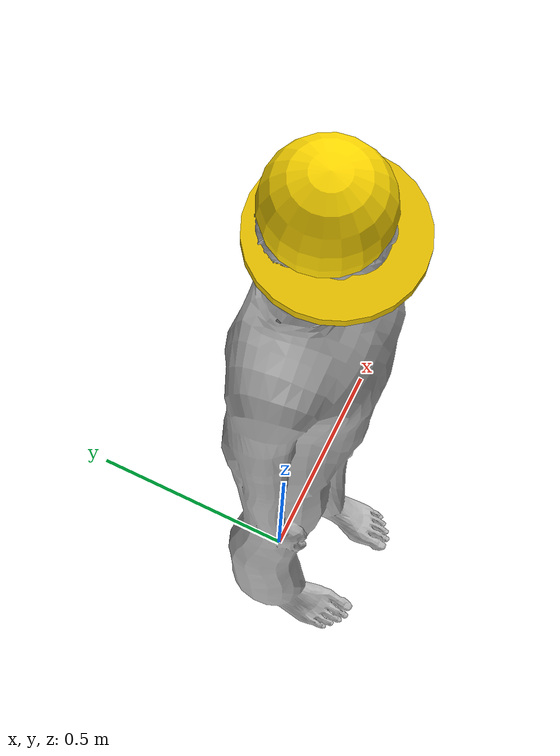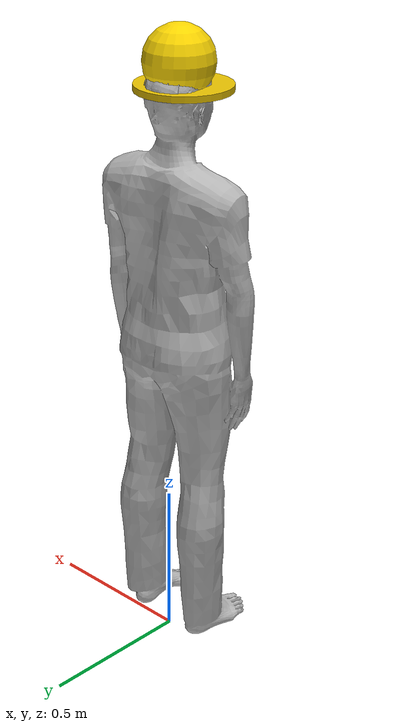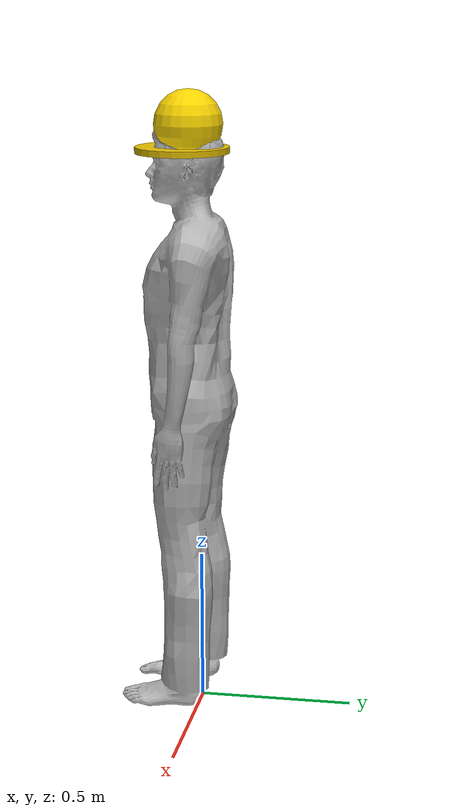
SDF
<?xml version="1.0" ?>
<sdf version="1.6">
  <model name="helmet_worker_standing">
    <static>true</static>
    <link name="link">
      <visual name="worker_visual">
        <pose>0 0 0.02 0 0 0</pose>
        <geometry><mesh><uri>model://person_standing/meshes/standing.dae</uri></mesh></geometry>
      </visual>
      <collision name="worker_collision">
        <pose>0 0 0.02 0 0 0</pose>
        <geometry><mesh><uri>model://person_standing/meshes/standing.dae</uri></mesh></geometry>
      </collision>
      <visual name="helmet_dome_visual">
        <pose>0 -0.035 1.920 0 0 0</pose>
        <geometry><sphere><radius>0.11</radius></sphere></geometry>
        <material><ambient>0.9 0.75 0.0 1</ambient><diffuse>1.0 0.85 0.0 1</diffuse><specular>0.3 0.3 0.3 1</specular></material>
      </visual>
      <collision name="helmet_dome_collision">
        <pose>0 -0.035 1.920 0 0 0</pose>
        <geometry><sphere><radius>0.11</radius></sphere></geometry>
      </collision>
      <visual name="helmet_brim_visual">
        <pose>0 -0.055 1.840 0 0 0</pose>
        <geometry><cylinder><radius>0.15</radius><length>0.02</length></cylinder></geometry>
        <material><ambient>0.8 0.65 0.0 1</ambient><diffuse>0.9 0.75 0.0 1</diffuse><specular>0.1 0.1 0.1 1</specular></material>
      </visual>
      <collision name="helmet_brim_collision">
        <pose>0 -0.055 1.840 0 0 0</pose>
        <geometry><cylinder><radius>0.15</radius><length>0.02</length></cylinder></geometry>
      </collision>
      <self_collide>0</self_collide><enable_wind>0</enable_wind><kinematic>0</kinematic>
    </link>
  </model>
</sdf>
